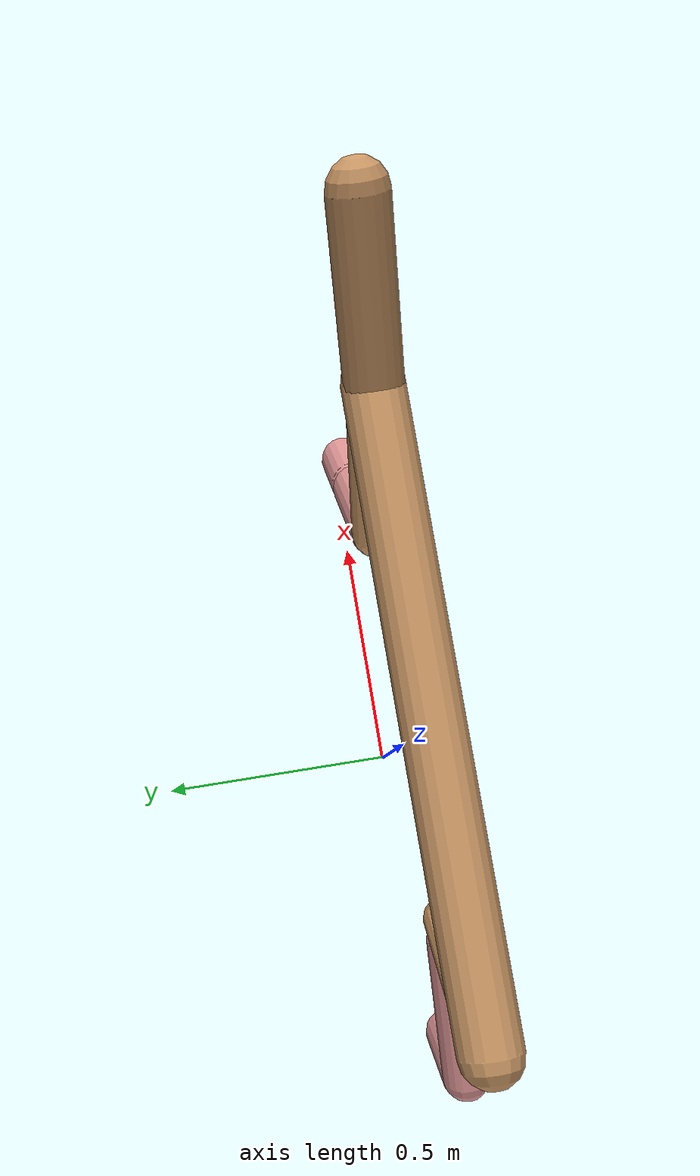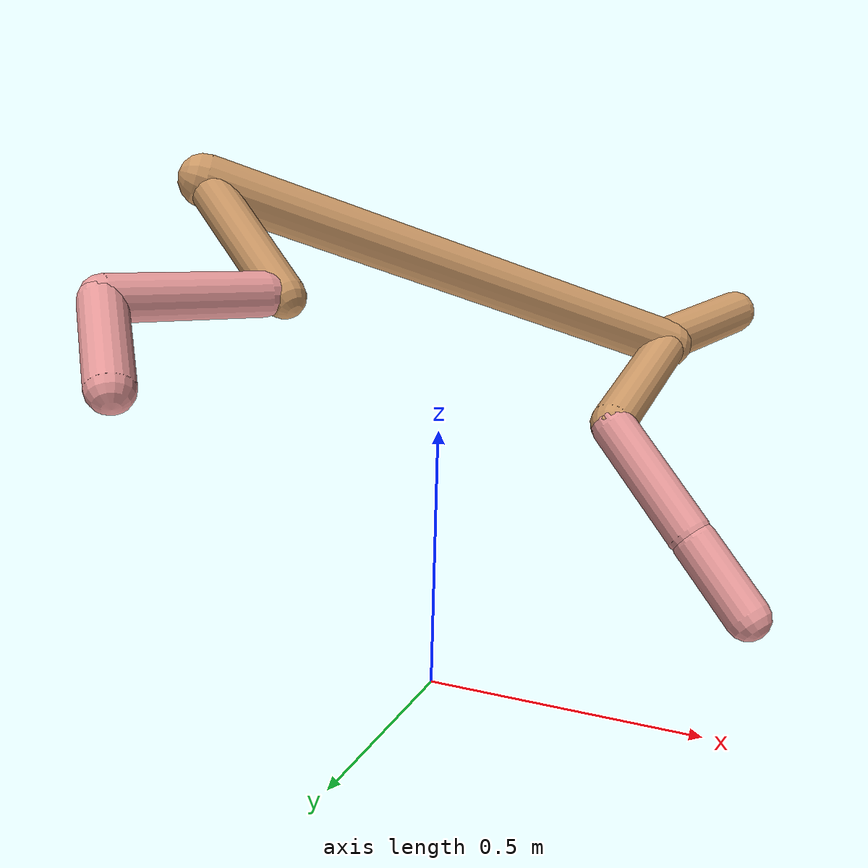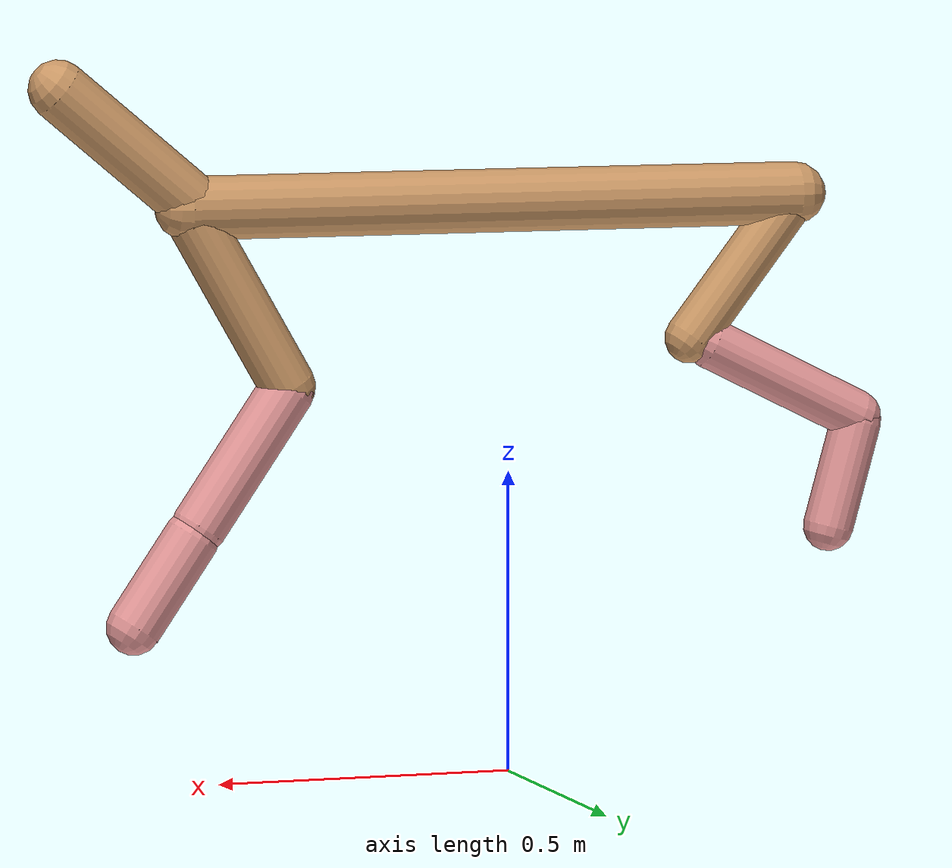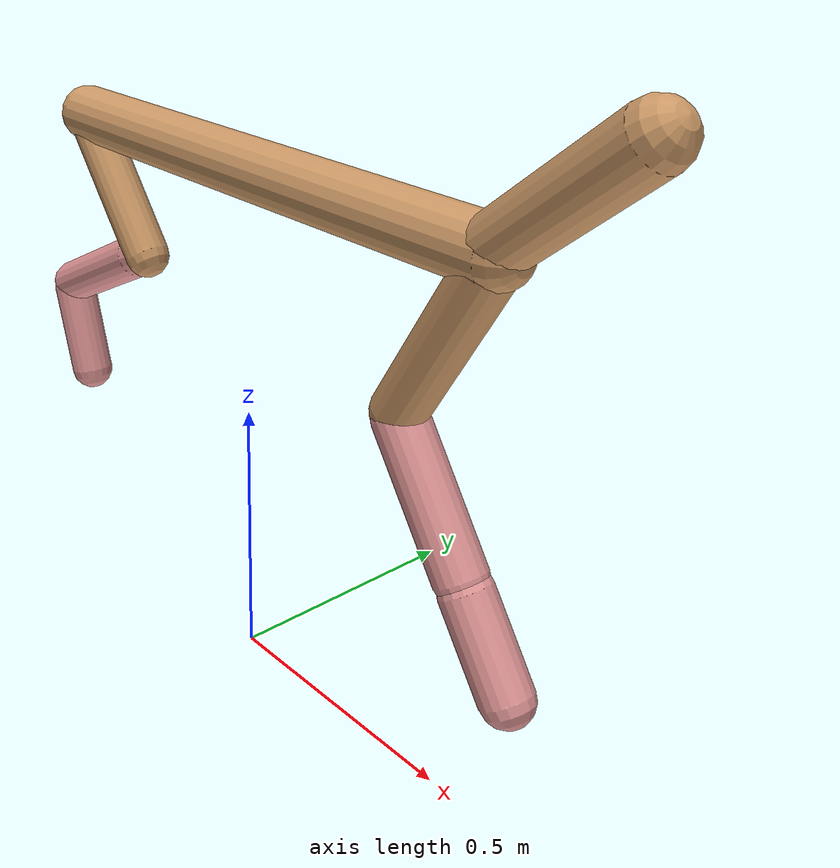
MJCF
<mujoco model="cheetah">
  <compiler angle="radian" coordinate="local" inertiafromgeom="true" settotalmass="14" />
  <default>
    <joint armature=".1" damping=".01" limited="true" solimplimit="0 .8 .03" solreflimit=".02 1" stiffness="8" />
    <geom conaffinity="0" condim="3" contype="1" friction="0.8 .1 .1" rgba="0.8 0.6 .4 1" solimp="0.0 0.8 0.01" solref="0.02 1" />
    <motor ctrllimited="true" ctrlrange="-1 1" />
  </default>
  <size nstack="300000" nuser_geom="1" />
  <option gravity="0 0 -9.81" timestep="0.01" />
  <worldbody>
    <body name="torso" pos="0.0 0.0 0.9497729111507236">
      <joint armature="0" axis="1 0 0" damping="0" limited="false" name="ignorex" pos="0 0 0" stiffness="0" type="slide" />
      <joint armature="0" axis="0 0 1" damping="0" limited="false" name="ignorez" pos="0 0 0" stiffness="0" type="slide" />
      <joint armature="0" axis="0 1 0" damping="0" limited="false" name="ignorey" pos="0 0 0" stiffness="0" type="hinge" />
      <geom fromto="-0.5 0.0 0.0 0.5511934245874727 0.0 0.0" name="torso" size="0.05229701284997457" type="capsule" />
      <geom axisangle="0 1 0 .87" name="head" pos="0.6511934245874728 0.0 0.1" size="0.04939882832220706 0.15" type="capsule" />

      <body name="bthigh" pos="-.5 0 0">
        <joint axis="0 1 0" damping="6" name="bthigh" pos="0 0 0" range="-.52 1.05" stiffness="240" type="hinge" />
        <geom axisangle="0 1 0 -3.8" name="bthigh" pos="0.09731854796231647 0.0 -0.1265141123510114" size="0.04209665172058329 0.1406020916640102" type="capsule" />
        <body name="bshin" pos="0.15463709592463293 0.0 -0.2430282247020228">
          <joint axis="0 1 0" damping="4.5" name="bshin" pos="0 0 0" range="-.785 .785" stiffness="180" type="hinge" />
          <geom axisangle="0 1 0 -2.03" name="bshin" pos="-0.13593074951803333 0.0 -0.06796537475901666" rgba="0.9 0.6 0.6 1" size="0.04209665172058329 0.14545043965242435" type="capsule" />
          <body name="bfoot" pos="-0.27186149903606666 0.0 -0.13593074951803333">
            <joint axis="0 1 0" damping="3" name="bfoot" pos="0 0 0" range="-.4 .785" stiffness="120" type="hinge" />
            <geom axisangle="0 1 0 -.27" name="bfoot" pos="0.02915759873653568 0.0 -0.09427623591479871" rgba="0.9 0.6 0.6 1" size="0.04209665172058329 0.09114894218218593" type="capsule" />
            <inertial mass="10" />
          </body>
        </body>
      </body>
      <body name="fthigh" pos="0.5511934245874728 0.0 0.0">
        <joint axis="0 1 0" damping="4.5" name="fthigh" pos="0 0 0" range="-1.5 0.8" stiffness="180" type="hinge" />
        <geom axisangle="0 1 0 .52" name="fthigh" pos="-0.08750888417816283 0.0 -0.15001523001970768" size="0.04586450753000985 0.16774874182327013" type="capsule" />
        <body name="fshin" pos="-0.17501776835632565 0.0 -0.30003046003941536">
          <joint axis="0 1 0" damping="3" name="fshin" pos="0 0 0" range="-1.2 1.1" stiffness="120" type="hinge" />
          <geom axisangle="0 1 0 -.6" name="fshin" pos="0.08121485992573768 0.0 -0.11245134451255986" rgba="0.9 0.6 0.6 1" size="0.04586450753000985 0.13369448596441078" type="capsule" />
          <body name="ffoot" pos="0.16242971985147536 0.0 -0.22490268902511973">
            <joint axis="0 1 0" damping="1.5" name="ffoot" pos="0 0 0" range="-3.1 -0.3" stiffness="60" type="hinge" />
            <geom axisangle="0 1 0 -.6" name="ffoot" pos="0.05488981364711905 0.0 -0.08538415456218519" rgba="0.9 0.6 0.6 1" size="0.04586450753000985 0.08828881148593165" type="capsule" />
            <inertial mass="10" />
          </body>
        </body>
      </body>
    </body>
  </worldbody>
  <actuator>
    <motor gear="120" joint="bthigh" name="bthigh" />
    <motor gear="90" joint="bshin" name="bshin" />
    <motor gear="60" joint="bfoot" name="bfoot" />
    <motor gear="120" joint="fthigh" name="fthigh" />
    <motor gear="60" joint="fshin" name="fshin" />
    <motor gear="30" joint="ffoot" name="ffoot" />
  </actuator>
</mujoco>
